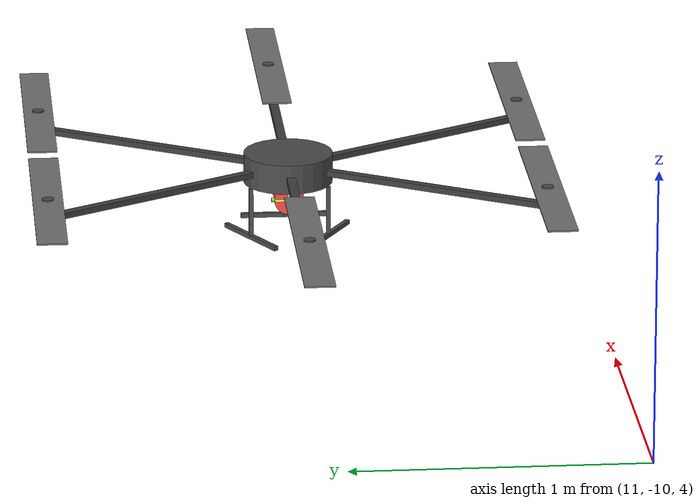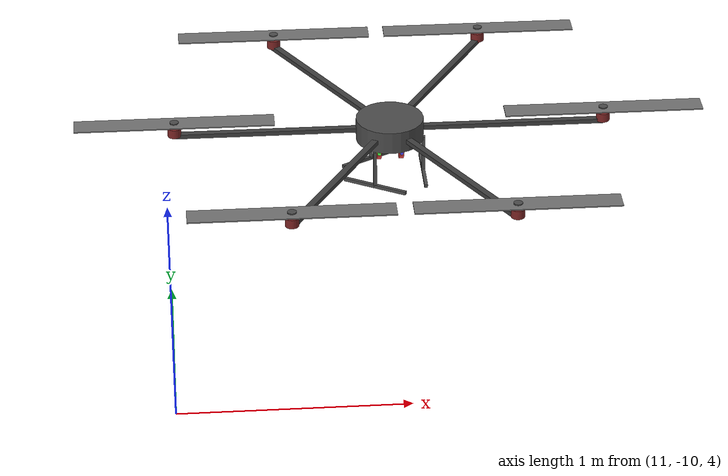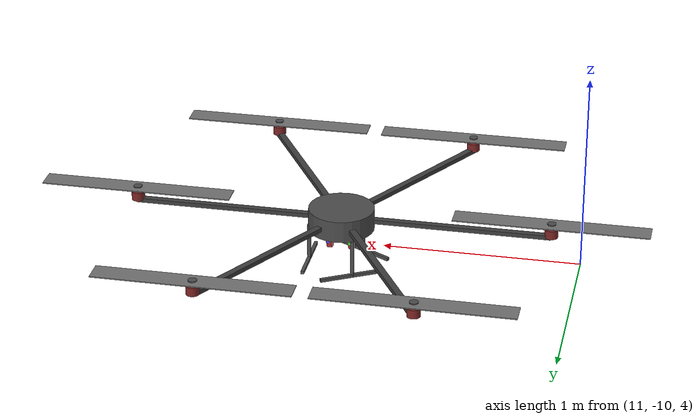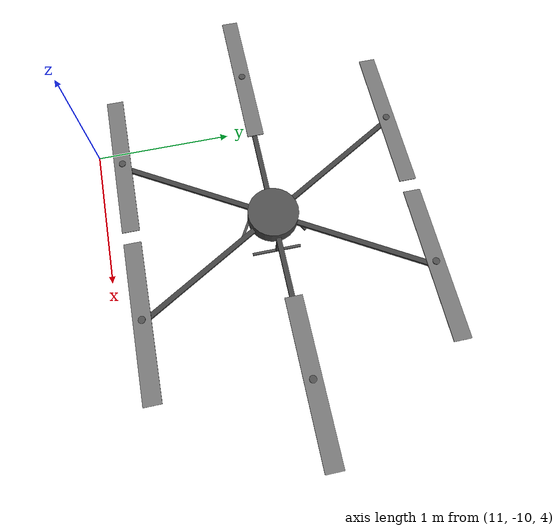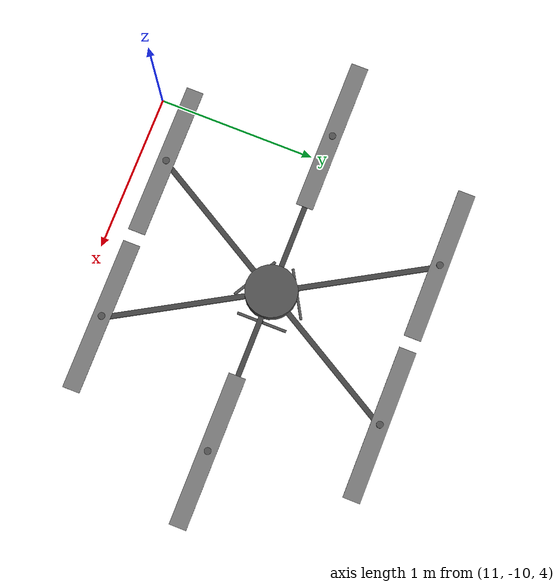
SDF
<sdf version="1.9">
 <world name="mars_hexacopter_world">
  <gravity>0 0 -3.72</gravity>
  <atmosphere type="adiabatic">
   <temperature>210.0</temperature>
   <pressure>636.0</pressure>
   <temperature_gradient>-0.000998</temperature_gradient>
  </atmosphere>
  <physics name="1ms" type="dart">
   <max_step_size>0.001</max_step_size>
   <real_time_factor>1.0</real_time_factor>
   <real_time_update_rate>1000</real_time_update_rate>
  </physics>
  <plugin filename="gz-sim-physics-system" name="gz::sim::systems::Physics"/>
  <plugin filename="gz-sim-imu-system" name="gz::sim::systems::Imu"/>
  <plugin filename="gz-sim-sensors-system" name="gz::sim::systems::Sensors">
   <render_engine>ogre2</render_engine>
  </plugin>
  <plugin filename="gz-sim-user-commands-system" name="gz::sim::systems::UserCommands"/>
  <plugin filename="gz-sim-scene-broadcaster-system" name="gz::sim::systems::SceneBroadcaster"/>
  <scene>
   <grid>false</grid>
   <ambient>1.0 0.85 0.65 1.0</ambient>
   <background>0.85 0.65 0.45 1.0</background>
   <shadows>true</shadows>
  </scene>
  <light type="directional" name="sun">
   <pose>0 0 100 0 0 0</pose>
   <diffuse>0.7 0.65 0.6 1</diffuse>
   <specular>0.1 0.1 0.1 1</specular>
   <direction>-0.5 0.1 -0.9</direction>
  </light>
  <include><uri>model://mars_hexacopter</uri><pose>11.99 -8.88 4.5005 0 0 0</pose></include>
 </world>
</sdf>
